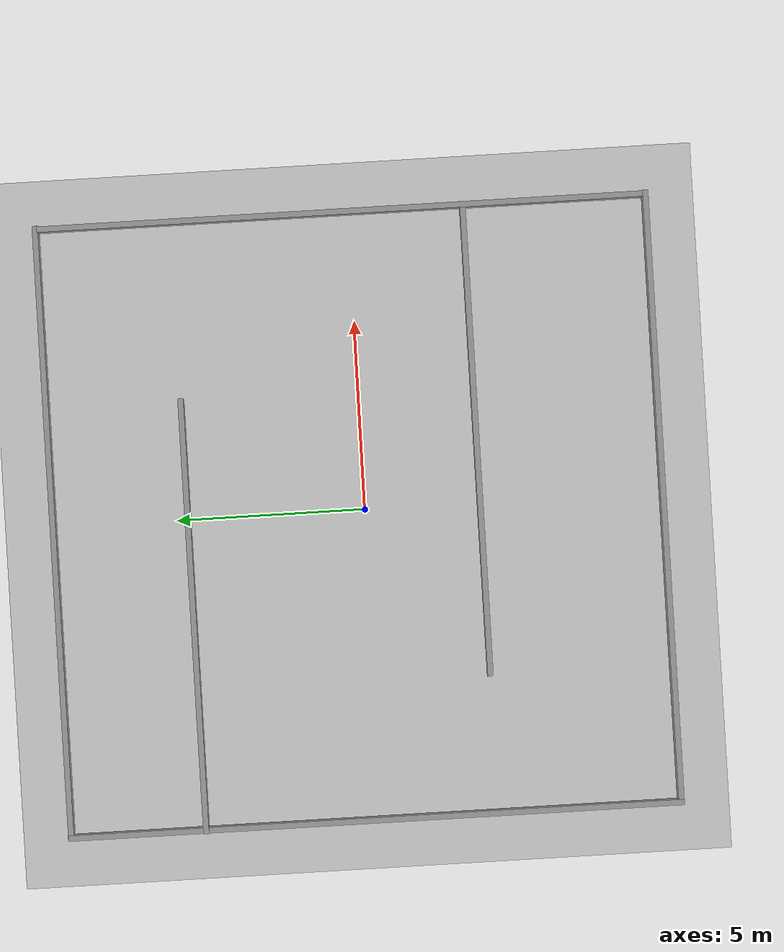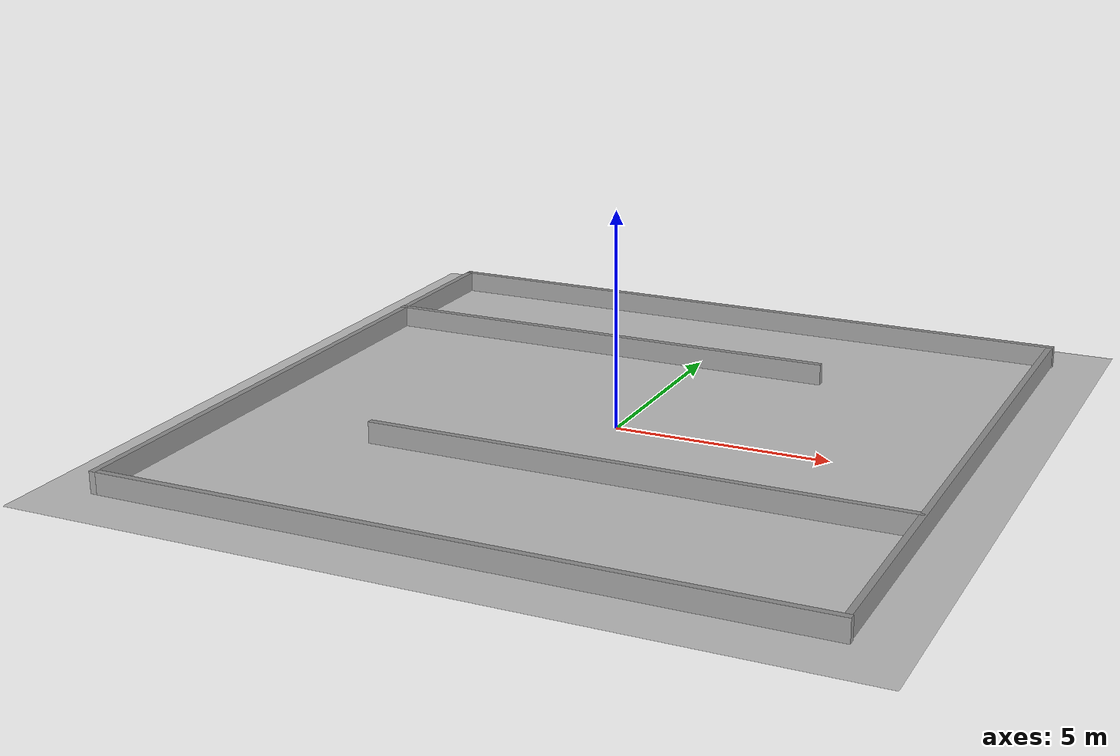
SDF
<sdf version="1.7">
 <world name="default">
  <light name="sun" type="directional">
   <pose>0 0 10 0 -0 0</pose>
   <diffuse>0.8 0.8 0.8 1</diffuse>
   <specular>0.2 0.2 0.2 1</specular>
   <attenuation>
    <range>1000</range>
    <constant>0.9</constant>
    <linear>0.01</linear>
    <quadratic>0.001</quadratic>
   </attenuation>
   <direction>-0.5 0.1 -0.9</direction>
   <spot><inner_angle>0</inner_angle><outer_angle>0</outer_angle><falloff>0</falloff></spot>
  </light>
  <model name="ground_plane">
   <static>1</static>
   <link name="link">
    <collision name="collision">
     <geometry><plane><normal>0 0 1</normal><size>100 100</size></plane></geometry>
     <surface>
      <contact><collide_bitmask>65535</collide_bitmask></contact>
      <friction><ode><mu>100</mu><mu2>50</mu2></ode></friction>
     </surface>
    </collision>
    <visual name="visual">
     <cast_shadows>0</cast_shadows>
     <geometry><plane><normal>0 0 1</normal><size>100 100</size></plane></geometry>
     <material>
      <script><uri>file://media/materials/scripts/gazebo.material</uri><name>Gazebo/Grey</name></script>
     </material>
    </visual>
   </link>
  </model>
  <gravity>0 0 -9.8</gravity>
  <magnetic_field>6e-06 2.3e-05 -4.2e-05</magnetic_field>
  <atmosphere type="adiabatic"/>
  <physics type="ode">
   <max_step_size>0.001</max_step_size>
   <real_time_factor>1</real_time_factor>
   <real_time_update_rate>1000</real_time_update_rate>
  </physics>
  <scene><ambient>0.4 0.4 0.4 1</ambient><background>0.7 0.7 0.7 1</background><shadows>1</shadows></scene>
  <spherical_coordinates>
   <surface_model>EARTH_WGS84</surface_model>
   <latitude_deg>44.98</latitude_deg>
   <longitude_deg>-93.27</longitude_deg>
   <elevation>256</elevation>
   <heading_deg>0</heading_deg>
  </spherical_coordinates>
  <model name="maze">
   <pose>-0.142914 0.196813 0 0 -0 0</pose>
   <link name="Wall_1">
    <collision name="Wall_1_Collision">
     <geometry><box><size>16 0.15 0.5</size></box></geometry>
     <pose>0 0 0.25 0 -0 0</pose>
    </collision>
    <visual name="Wall_1_Visual">
     <pose>0 0 0.25 0 -0 0</pose>
     <geometry><box><size>16 0.15 0.5</size></box></geometry>
     <material>
      <script><uri>file://media/materials/scripts/gazebo.material</uri><name>Gazebo/Grey</name></script>
      <ambient>1 1 1 1</ambient>
     </material>
     <meta><layer>0</layer></meta>
    </visual>
    <pose>8.03961 0.019348 0 0 -0 -1.5708</pose>
   </link>
   <link name="Wall_10">
    <collision name="Wall_10_Collision">
     <geometry><box><size>11.5 0.15 0.5</size></box></geometry>
     <pose>0 0 0.25 0 -0 0</pose>
    </collision>
    <visual name="Wall_10_Visual">
     <pose>0 0 0.25 0 -0 0</pose>
     <geometry><box><size>11.5 0.15 0.5</size></box></geometry>
     <material>
      <script><uri>file://media/materials/scripts/gazebo.material</uri><name>Gazebo/Grey</name></script>
      <ambient>1 1 1 1</ambient>
     </material>
     <meta><layer>0</layer></meta>
    </visual>
    <pose>-2.38666 4.49697 0 0 -0 0</pose>
   </link>
   <link name="Wall_12">
    <collision name="Wall_12_Collision">
     <geometry><box><size>12.5 0.15 0.5</size></box></geometry>
     <pose>0 0 0.25 0 -0 0</pose>
    </collision>
    <visual name="Wall_12_Visual">
     <pose>0 0 0.25 0 -0 0</pose>
     <geometry><box><size>12.5 0.15 0.5</size></box></geometry>
     <material>
      <script><uri>file://media/materials/scripts/gazebo.material</uri><name>Gazebo/Grey</name></script>
      <ambient>1 1 1 1</ambient>
     </material>
     <meta><layer>0</layer></meta>
    </visual>
    <pose>1.8242 -3.23004 0 0 -0 3.14159</pose>
   </link>
   <link name="Wall_3">
    <collision name="Wall_3_Collision">
     <geometry><box><size>16.25 0.15 0.5</size></box></geometry>
     <pose>0 0 0.25 0 -0 0</pose>
    </collision>
    <visual name="Wall_3_Visual">
     <pose>0 0 0.25 0 -0 0</pose>
     <geometry><box><size>16.25 0.15 0.5</size></box></geometry>
     <material>
      <script><uri>file://media/materials/scripts/gazebo.material</uri><name>Gazebo/Grey</name></script>
      <ambient>1 1 1 1</ambient>
     </material>
     <meta><layer>0</layer></meta>
    </visual>
    <pose>-8.04173 -0.007064 0 0 -0 1.5708</pose>
   </link>
   <link name="Wall_5">
    <collision name="Wall_5_Collision">
     <geometry><box><size>16.25 0.15 0.5</size></box></geometry>
     <pose>0 0 0.25 0 -0 0</pose>
    </collision>
    <visual name="Wall_5_Visual">
     <pose>0 0 0.25 0 -0 0</pose>
     <geometry><box><size>16.25 0.15 0.5</size></box></geometry>
     <material>
      <script><uri>file://media/materials/scripts/gazebo.material</uri><name>Gazebo/Grey</name></script>
      <ambient>1 1 1 1</ambient>
     </material>
     <meta><layer>0</layer></meta>
    </visual>
    <pose>0.011663 8.05706 0 0 -0 3.14159</pose>
   </link>
   <link name="Wall_7">
    <collision name="Wall_7_Collision">
     <geometry><box><size>16.25 0.15 0.5</size></box></geometry>
     <pose>0 0 0.25 0 -0 0</pose>
    </collision>
    <visual name="Wall_7_Visual">
     <pose>0 0 0.25 0 -0 0</pose>
     <geometry><box><size>16.25 0.15 0.5</size></box></geometry>
     <material>
      <script><uri>file://media/materials/scripts/gazebo.material</uri><name>Gazebo/Grey</name></script>
      <ambient>1 1 1 1</ambient>
     </material>
     <meta><layer>0</layer></meta>
    </visual>
    <pose>0.008267 -8.05706 0 0 -0 0</pose>
   </link>
   <static>1</static>
  </model>
 </world>
</sdf>
